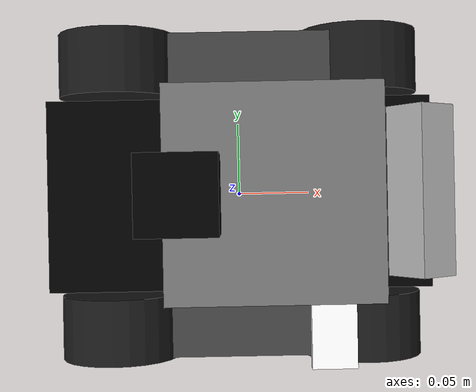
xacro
<?xml version="1.0"?>

<robot name="differential_drive_robot_4wheel" xmlns:xacro="http://www.ros.org/wiki/xacro">

    <xacro:macro name="box_link" params="name length width height density color">
        <!-- Compute mass -->
        <xacro:property name="volume" value="${length * width * height}"/>
        <xacro:property name="mass" value="${density * volume}"/>

        <!-- Inertia for a box centered at origin -->
        <xacro:property name="ixx" value="${(1.0/12.0) * mass * (height**2 + width**2)}"/>
        <xacro:property name="iyy" value="${(1.0/12.0) * mass * (length**2 + height**2)}"/>
        <xacro:property name="izz" value="${(1.0/12.0) * mass * (length**2 + width**2)}"/>

        <link name="${name}">
          <visual>
            <origin xyz="0 0 0" rpy="0 0 0"/>
            <geometry>
              <box size="${length} ${width} ${height}"/>
            </geometry>
            <material name="${name}_material">
              <color rgba="${color}"/>
            </material>
          </visual>

          <collision>
            <origin xyz="0 0 0" rpy="0 0 0"/>
            <geometry>
              <box size="${length} ${width} ${height}"/>
            </geometry>
          </collision>

          <inertial>
            <origin xyz="0 0 0" rpy="0 0 0"/>
            <mass value="${mass}"/>
            <inertia
              ixx="${ixx}" ixy="0.0" ixz="0.0"
              iyy="${iyy}" iyz="0.0"
              izz="${izz}"/>
          </inertial>
        </link>
    </xacro:macro>

    <xacro:macro name="wheel_link" params="name radius width density color">

        <!-- Volume and mass -->
        <xacro:property name="volume" value="${pi * radius**2 * width}"/>
        <xacro:property name="mass" value="${density * volume}"/>

        <!-- Solid cylinder inertias (rotated about its own Z axis) -->
        <!-- Assume rotation axis (wheel spin) is along the X axis (due to roll of π/2) -->
        <xacro:property name="ixx" value="${0.5 * mass * radius**2}"/> <!-- spin axis -->
        <xacro:property name="iyy" value="${0.25 * mass * radius**2 + (1.0/12.0) * mass * width**2}"/>
        <xacro:property name="izz" value="${iyy}"/>

        <link name="${name}">
          <visual>
            <origin xyz="0 0 0" rpy="${pi/2} 0 0"/> <!-- roll = pi/2 -->
            <geometry>
              <cylinder radius="${radius}" length="${width}"/>
            </geometry>
            <material name="${name}_material">
              <color rgba="${color}"/>
            </material>
          </visual>

          <collision>
            <origin xyz="0 0 0" rpy="${pi/2} 0 0"/> <!-- roll = pi/2 -->
            <geometry>
              <cylinder radius="${radius}" length="${width}"/>
            </geometry>
            <surface>
                <friction>
                  <ode>
                    <mu>1.5</mu>
                    <mu2>0.5</mu2>
                    <slip1>0.1</slip1>
                    <slip2>0.3</slip2>
                  </ode>
                </friction>
                <bounce />
                <contact>
                  <ode>
                    <kp>1000.0</kp>
                    <kd>10.0</kd>
                  </ode>
                </contact>
            </surface>
          </collision>

          <inertial>
            <origin xyz="0 0 0" rpy="0 0 0"/>
            <mass value="${mass}"/>
            <inertia
              ixx="${ixx}" ixy="0.0" ixz="0.0"
              iyy="${iyy}" iyz="0.0"
              izz="${izz}"/>
          </inertial>
        </link>
    </xacro:macro>

    <!-- Robot Parameters -->
    <xacro:property name="velcro_height" value=".006"/>

    <xacro:property name="body_length" value="0.24"/>
    <xacro:property name="body_width" value="0.120"/>
    <xacro:property name="body_height" value="0.06"/>
    <xacro:property name="body_ground_clearance" value="0.021"/>
    <xacro:property name="body_density" value="2700.0"/> <!-- Aluminum -->

    <xacro:property name="wheel_radius" value="0.039"/>
    <xacro:property name="wheel_width" value="0.042"/>
    <xacro:property name="body_wheel_gap" value="0.006"/>
    <xacro:property name="body_wheel_axle_offset" value="${(wheel_radius-body_ground_clearance) - body_height/2.0}"/>
    <xacro:property name="wheel_separation" value="${body_width + wheel_width + 2*body_wheel_gap}"/>
    <xacro:property name="wheel_offset" value="${body_length/2 - wheel_radius}"/>
    <xacro:property name="wheel_density" value="900"/> <!-- Rubber -->

    <xacro:property name="orin_length" value="0.110"/>
    <xacro:property name="orin_width" value="0.110"/>
    <xacro:property name="orin_height" value="0.072"/>
    <xacro:property name="orin_density" value="2700.0"/> <!-- Aluminum -->

    <xacro:property name="battery_length" value="0.095"/>
    <xacro:property name="battery_width" value="0.190"/>
    <xacro:property name="battery_height" value="0.027"/>
    <xacro:property name="battery_density" value="2700.0"/> <!-- aluminum -->

    <xacro:property name="lidar_length" value="0.038"/>
    <xacro:property name="lidar_width" value="0.038"/>
    <xacro:property name="lidar_height" value="0.035"/>
    <xacro:property name="lidar_density" value="900.0"/> <!-- plastic-->

    <xacro:property name="d435_length" value="0.024"/>
    <xacro:property name="d435_width" value="0.090"/>
    <xacro:property name="d435_height" value="0.025"/>
    <xacro:property name="d435_density" value="900.0"/> <!-- plastic-->

    <xacro:property name="gps_length" value="0.025"/>
    <xacro:property name="gps_width" value="0.042"/>
    <xacro:property name="gps_height" value="0.008"/>
    <xacro:property name="gps_density" value="900.0"/> <!-- plastic-->

    <xacro:property name="body_battery_offset" value="${body_height/2 + battery_height/2 + velcro_height}"/>
    <xacro:property name="battery_orin_offset" value="${battery_height/2 + orin_height/2 + velcro_height}"/>
    <xacro:property name="orin_lidar_offset" value="${orin_height/2 + lidar_height/2 + velcro_height}"/>
    <xacro:property name="orin_d435_offset_x" value="${orin_length/2 + d435_length/2 + velcro_height*2}"/>
    <xacro:property name="orin_d435_offset_z" value="${orin_height/2 - d435_height/2}"/>
    <xacro:property name="orin_gps_offset_x" value=".034"/>
    <xacro:property name="orin_gps_offset_y" value="-${orin_width/2 + gps_width/2}"/>
    <xacro:property name="orin_gps_offset_z" value="-${orin_height/2 - .020}"/>

    <!-- Control Parameters -->
    <xacro:property name="max_linear_acceleration" value="10"/>
    <xacro:property name="gazebo_diff_drive_fudge" value="1.62"/>

    <!-- Links -->

    <!-- Body Link -->
    <xacro:box_link name="base_link" length="${body_length}" width="${body_width}" height="${body_height}" density="${body_density}" color="0.0 0.0 0.0 1.0"/>
    <xacro:box_link name="battery_link" length="${battery_length}" width="${battery_width}" height="${battery_height}" density="${battery_density}" color="0.25 0.25 0.25 1.0"/>
    <xacro:box_link name="orin_link" length="${orin_length}" width="${orin_width}" height="${orin_height}" density="${orin_density}" color="0.45 0.45 0.45 1.0"/>
    <xacro:box_link name="lidar_pre_link" length="${lidar_length}" width="${lidar_width}" height="${lidar_height}" density="${lidar_density}" color="0.0 0.0 0.0 1.0"/>
    <xacro:box_link name="camera_pre_link" length="${d435_length}" width="${d435_width}" height="${d435_height}" density="${d435_density}" color="0.7 0.7 0.7 1.0"/>
    <xacro:box_link name="gps_link" length="${gps_length}" width="${gps_width}" height="${gps_height}" density="${gps_density}" color="1.0 1.0 1.0 1.0"/>

    <xacro:wheel_link name="left_wheel_link" radius="${wheel_radius}" width="${wheel_width}" density="${wheel_density}" color="0.1 0.1 0.1 1.0"/>
    <xacro:wheel_link name="right_wheel_link" radius="${wheel_radius}" width="${wheel_width}" density="${wheel_density}" color="0.1 0.1 0.1 1.0"/>
    <xacro:wheel_link name="left_wheel2_link" radius="${wheel_radius}" width="${wheel_width}" density="${wheel_density}" color="0.1 0.1 0.1 1.0"/>
    <xacro:wheel_link name="right_wheel2_link" radius="${wheel_radius}" width="${wheel_width}" density="${wheel_density}" color="0.1 0.1 0.1 1.0"/>

    <link name="base_footprint">
        <inertial>
          <mass value="0.000001"/>
          <origin xyz="0 0 0" rpy="0 0 0"/>
          <inertia ixx="1e-6" ixy="0" ixz="0" iyy="1e-6" iyz="0" izz="1e-6"/>
        </inertial>
    </link>

    <link name="camera_optical_link"/>
    <link name="camera_link"/>
    <link name="lidar_link"/>

    <!-- Joints -->

    <joint name="base_footprint_joint" type="fixed">
        <parent link="base_footprint"/>
        <child link="base_link"/>
        <origin xyz="0 0 ${body_ground_clearance + body_height/2.0}" rpy="0 0 0"/>
    </joint>

    <!-- Left Wheel Joint -->
    <joint name="left_wheel_joint" type="continuous">
        <origin xyz="-${wheel_offset} ${wheel_separation/2} ${body_wheel_axle_offset}" rpy="0 0 0"/>
        <parent link="base_link"/>
        <child link="left_wheel_link"/>
        <axis xyz="0 1 0"/>
        <limit effort="100" velocity="100.0"/>
        <dynamics damping="1.0" friction="0.1"/>
    </joint>

    <!-- Right Wheel Joint -->
    <joint name="right_wheel_joint" type="continuous">
        <origin xyz="-${wheel_offset} ${-wheel_separation/2} ${body_wheel_axle_offset}" rpy="0 0 0"/>
        <parent link="base_link"/>
        <child link="right_wheel_link"/>
        <axis xyz="0 1 0"/>
        <limit effort="100" velocity="100.0"/>
        <dynamics damping="1.0" friction="0.1"/>
    </joint>

    <!-- Left Wheel2 Joint -->
    <joint name="left_wheel2_joint" type="continuous">
        <origin xyz="${wheel_offset} ${wheel_separation/2} ${body_wheel_axle_offset}" rpy="0 0 0"/>
        <parent link="base_link"/>
        <child link="left_wheel2_link"/>
        <axis xyz="0 1 0"/>
        <limit effort="100" velocity="100.0"/>
        <dynamics damping="1.0" friction="0.1"/>
    </joint>

    <!-- Right Wheel2 Joint -->
    <joint name="right_wheel2_joint" type="continuous">
        <origin xyz="${wheel_offset} ${-wheel_separation/2} ${body_wheel_axle_offset}" rpy="0 0 0"/>
        <parent link="base_link"/>
        <child link="right_wheel2_link"/>
        <axis xyz="0 1 0"/>
        <limit effort="100" velocity="100.0"/>
        <dynamics damping="1.0" friction="0.1"/>
    </joint>

    <!-- battery joint -->
    <joint name="battery_joint" type="fixed">
        <origin xyz=".007 0 ${body_battery_offset}" rpy="0 0 0"/>
        <parent link="base_link"/>
        <child link="battery_link"/>
    </joint>

    <!-- orin joint -->
    <joint name="orin_joint" type="fixed">
        <origin xyz=".010 0 ${battery_orin_offset}" rpy="0 0 0"/>
        <parent link="battery_link"/>
        <child link="orin_link"/>
    </joint>

    <!-- lidar joint -->
    <joint name="lidar_joint" type="fixed">
        <origin xyz="-.045 0 ${orin_lidar_offset}" rpy="0 0 0"/>
        <parent link="orin_link"/>
        <child link="lidar_pre_link"/>
    </joint>

    <!-- lidar calibration joint -->
    <joint name="lidar_calibration_joint" type="fixed">
	    <origin xyz="0 0 0" rpy="0 0 0"/>
        <parent link="lidar_pre_link"/>
        <child link="lidar_link"/>
    </joint>

    <!-- camera joint -->
    <joint name="d435_joint" type="fixed">
	    <origin xyz="${orin_d435_offset_x} 0 ${orin_d435_offset_z-.02}" rpy="0 ${35.0*3.1416/180.0} 0"/>
        <parent link="orin_link"/>
        <child link="camera_pre_link"/>
    </joint>

    <!-- camera calibration joint -->
    <joint name="d435_calibration_joint" type="fixed">
	    <origin xyz="0.00185596  0.00479639 -0.00043884" rpy="0.00352776  0.01112985 -0.00777017"/>
        <parent link="camera_pre_link"/>
        <child link="camera_link"/>
    </joint>

    <!-- optical frame ${-3.1415927/2} 0 ${-3.1415927/2} -->
    <joint name="camera_optical_joint" type="fixed">
        <origin xyz="0 0 0" rpy="0 0 0"/>
        <parent link="camera_link"/>
        <child link="camera_optical_link"/>
    </joint>

    <!-- gps joint -->
    <joint name="gps_joint" type="fixed">
        <origin xyz="${orin_gps_offset_x} ${orin_gps_offset_y} ${orin_gps_offset_z}" rpy="0 0 0"/>
        <parent link="orin_link"/>
        <child link="gps_link"/>
    </joint>

    <!-- Gazebo Parameters -->

    <!-- Gazebo Plugins -->
    <gazebo>
        <plugin filename="gz-sim-diff-drive-system" name="gz::sim::systems::DiffDrive">
            <right_joint>right_wheel_joint</right_joint>
            <left_joint>left_wheel_joint</left_joint>
            <right_joint>right_wheel2_joint</right_joint>
            <left_joint>left_wheel2_joint</left_joint>
            <wheel_separation>${wheel_separation*gazebo_diff_drive_fudge}</wheel_separation>
            <wheel_radius>${wheel_radius}</wheel_radius>
            <max_linear_acceleration>${max_linear_acceleration}</max_linear_acceleration>
            <odom_publish_frequency>100</odom_publish_frequency>
            <topic>cmd_vel</topic>
            <odom_topic>odom</odom_topic>
            <frame_id>odom</frame_id>
            <child_frame_id>base_footprint</child_frame_id>
            <tf_topic>/tf</tf_topic>
        </plugin>

        <plugin filename="gz-sim-joint-state-publisher-system" name="gz::sim::systems::JointStatePublisher">
            <topic>joint_states</topic>
            <joint_name>right_wheel_joint</joint_name>
            <joint_name>left_wheel_joint</joint_name>
            <joint_name>right_wheel2_joint</joint_name>
            <joint_name>left_wheel2_joint</joint_name>
        </plugin>

    </gazebo>

    <!-- Gazebo sensors -->

    <gazebo reference="camera_link">
      <sensor name="color_camera" type="rgbd_camera">
        <pose>0.0 0.0 0 0 0 0</pose>
        <always_on>true</always_on>
        <visualize>true</visualize>
        <update_rate>30</update_rate>
        <topic>/camera</topic>
        <gz_frame_id>camera_link</gz_frame_id>
        <camera name="intel_realsense_r200">
          <horizontal_fov>1.02974</horizontal_fov>
          <image>
            <width>640</width>
            <height>480</height>
            <format>R8G8B8</format>
          </image>
          <clip>
            <near>0.05</near>
            <far>3</far>
          </clip>
          <noise>
            <type>gaussian</type>
            <!-- As far as I can tell, this ends up being noise in the point cloud, not the rgb image.
            And, it is weird. Turning off here. Perhaps implement downstream. -->
            <mean>0.0</mean>
            <stddev>0.00</stddev>
          </noise>
        </camera>
      </sensor>
    </gazebo>

    <xacro:if value='false'>
    <gazebo reference="camera_link">
      <sensor name="depth_camera" type="depth_camera">
        <pose>0 0 0 0 0 0</pose>
        <always_on>true</always_on>
        <visualize>true</visualize>
        <update_rate>30</update_rate>
        <topic>/camera/depth/image_raw</topic>
        <gz_frame_id>camera_optical_link</gz_frame_id>
        <camera name="intel_realsense_r200">
          <horizontal_fov>1.02974</horizontal_fov>
          <image>
            <width>424</width>
            <height>240</height>
            <format>R8G8B8</format>
          </image>
          <clip>
            <near>0.05</near>
            <far>200</far>
          </clip>
          <noise>
            <type>gaussian</type>
            <mean>0.0</mean>
            <stddev>0.007</stddev>
          </noise>
        </camera>
      </sensor>
    </gazebo>
    </xacro:if>

    <gazebo reference="lidar_link">
      <sensor name='hls_lfcd_lds' type='gpu_lidar'>
        <always_on>true</always_on>
        <visualize>true</visualize>
        <pose>0 0 0.012 0 -0 0</pose>
        <update_rate>10</update_rate>
        <topic>scan</topic>
        <gz_frame_id>lidar_link</gz_frame_id>
        <lidar>
          <scan>
            <horizontal>
              <samples>360</samples>
              <resolution>1.000000</resolution>
              <min_angle>0.000000</min_angle>
              <max_angle>6.280000</max_angle>
            </horizontal>
          </scan>
          <range>
            <min>0.160000</min>
            <max>10.0</max>
            <resolution>0.015000</resolution>
          </range>
          <noise>
            <type>gaussian</type>
            <mean>0.0</mean>
            <stddev>0.01</stddev>
          </noise>
        </lidar>
      </sensor>
    </gazebo>

    <gazebo reference="base_link">
      <sensor name='ugv_imu' type='imu'>
        <always_on>true</always_on>
        <update_rate>20</update_rate>
        <topic>imu</topic>
        <gz_frame_id>base_link</gz_frame_id>
        <imu>
          <angular_velocity>
            <x>
              <noise type='gaussian'>
                <mean>0.0</mean>
                <stddev>2e-4</stddev>
              </noise>
            </x>
            <y>
              <noise type='gaussian'>
                <mean>0.0</mean>
                <stddev>2e-4</stddev>
              </noise>
            </y>
            <z>
              <noise type='gaussian'>
                <mean>0.0</mean>
                <stddev>2e-4</stddev>
              </noise>
            </z>
          </angular_velocity>
          <linear_acceleration>
            <x>
              <noise type='gaussian'>
                <mean>0.0</mean>
                <stddev>1.7e-2</stddev>
              </noise>
            </x>
            <y>
              <noise type='gaussian'>
                <mean>0.0</mean>
                <stddev>1.7e-2</stddev>
              </noise>
            </y>
            <z>
              <noise type='gaussian'>
                <mean>0.0</mean>
                <stddev>1.7e-2</stddev>
              </noise>
            </z>
          </linear_acceleration>
        </imu>
      </sensor>
    </gazebo>

</robot>
